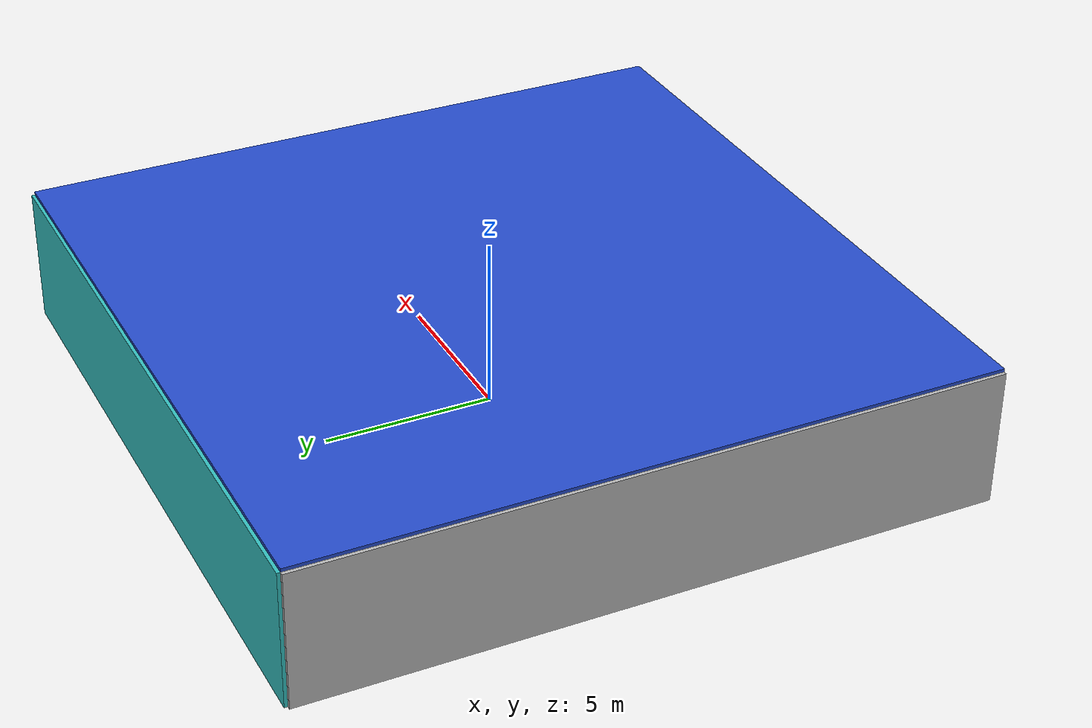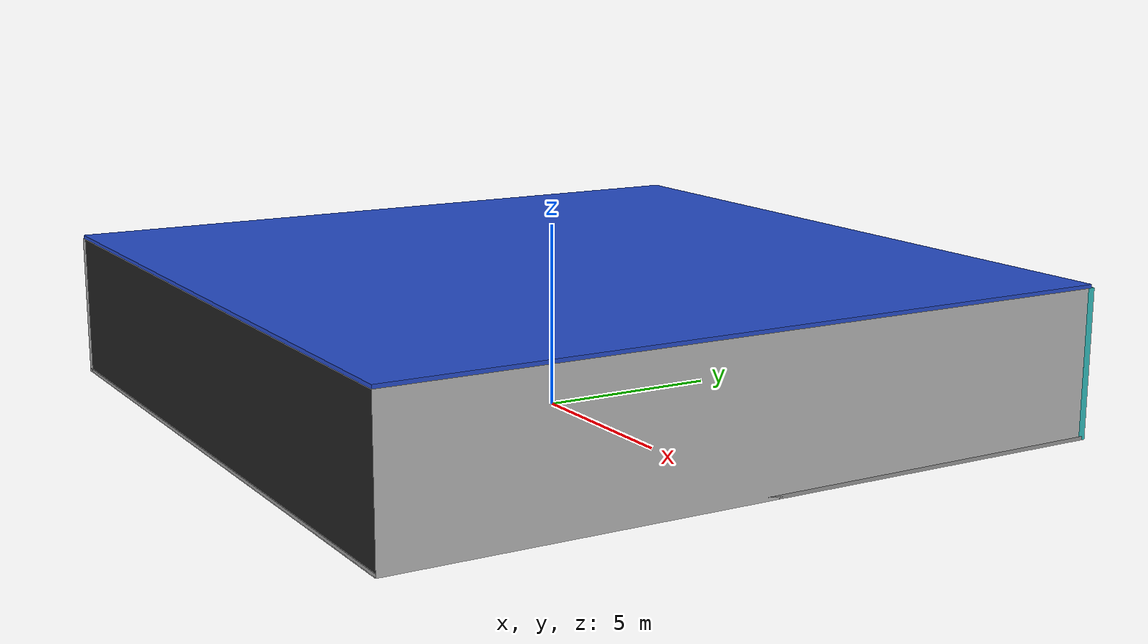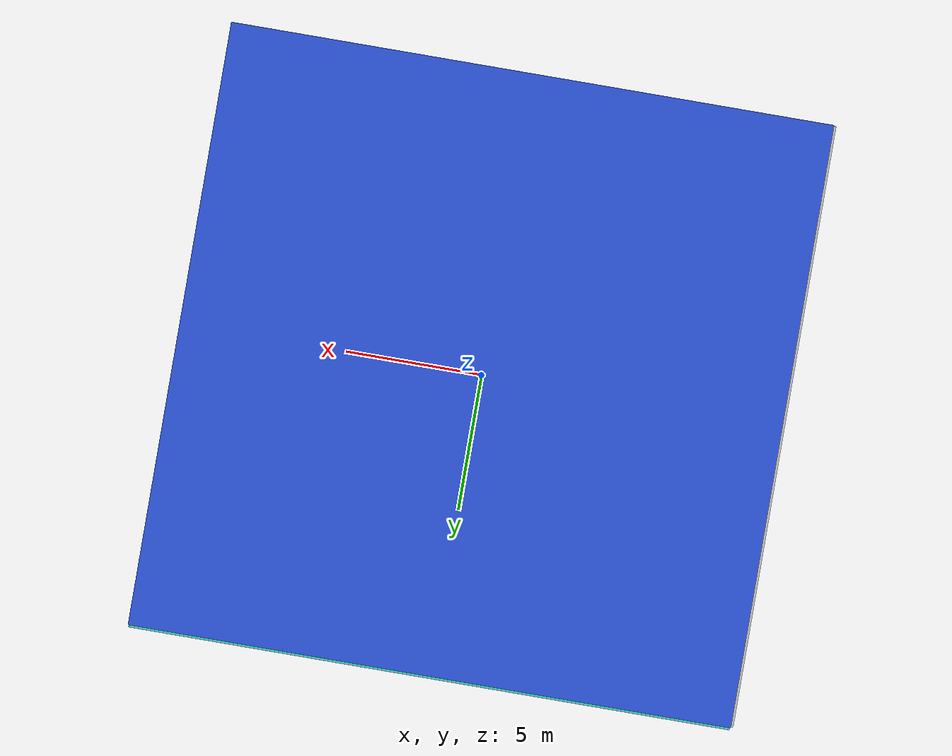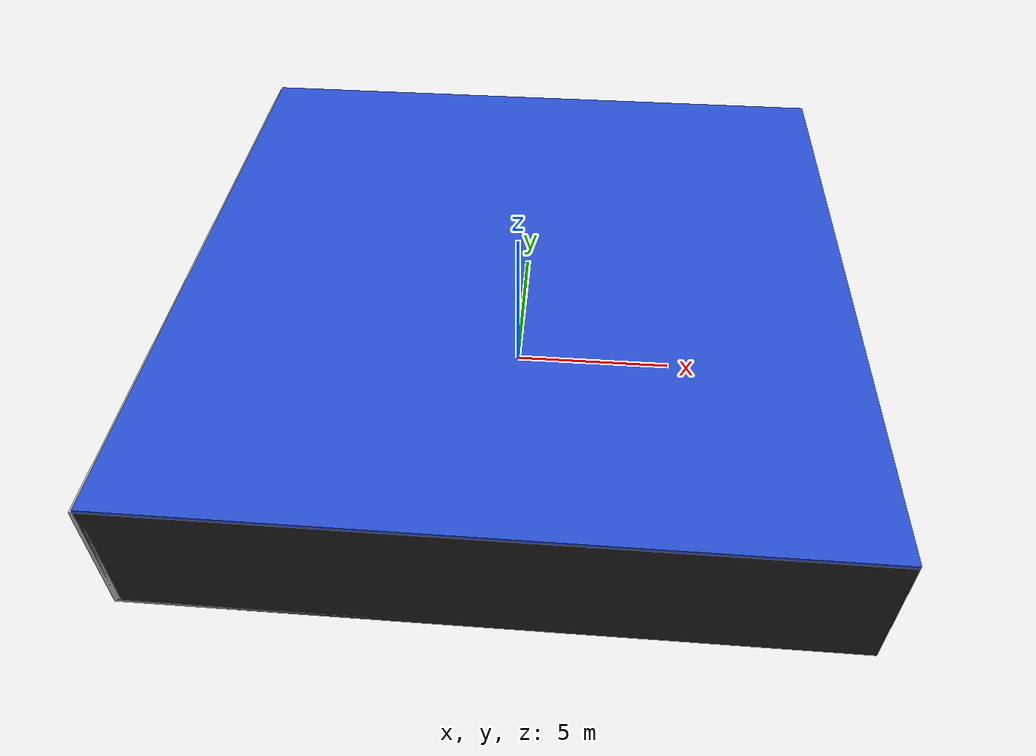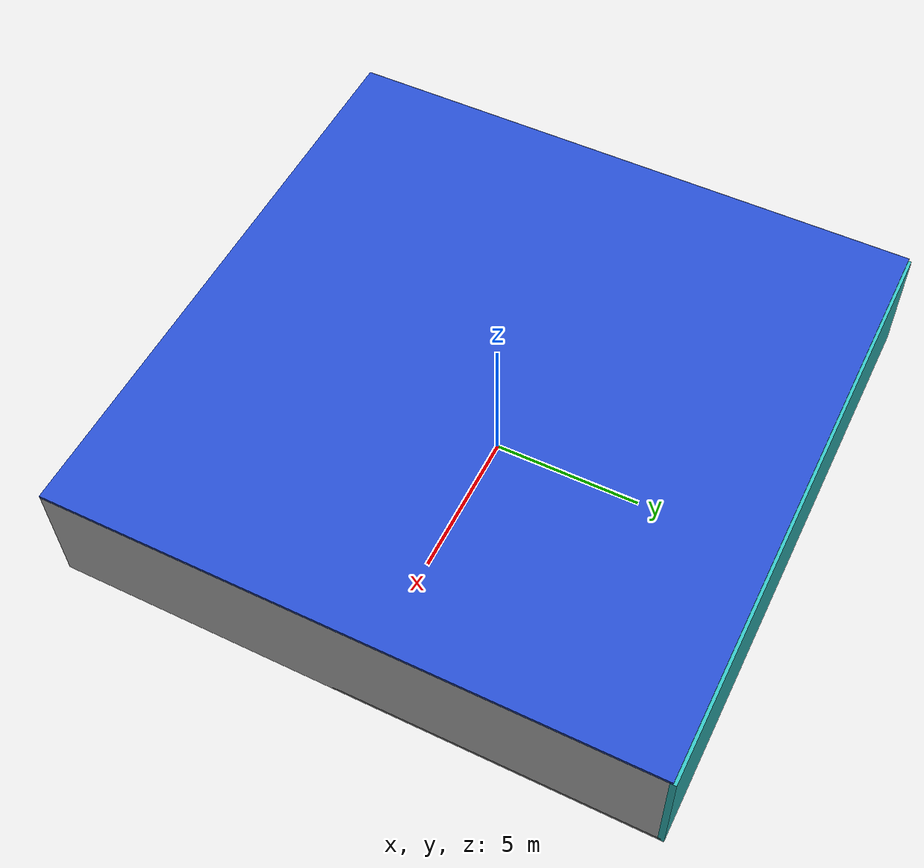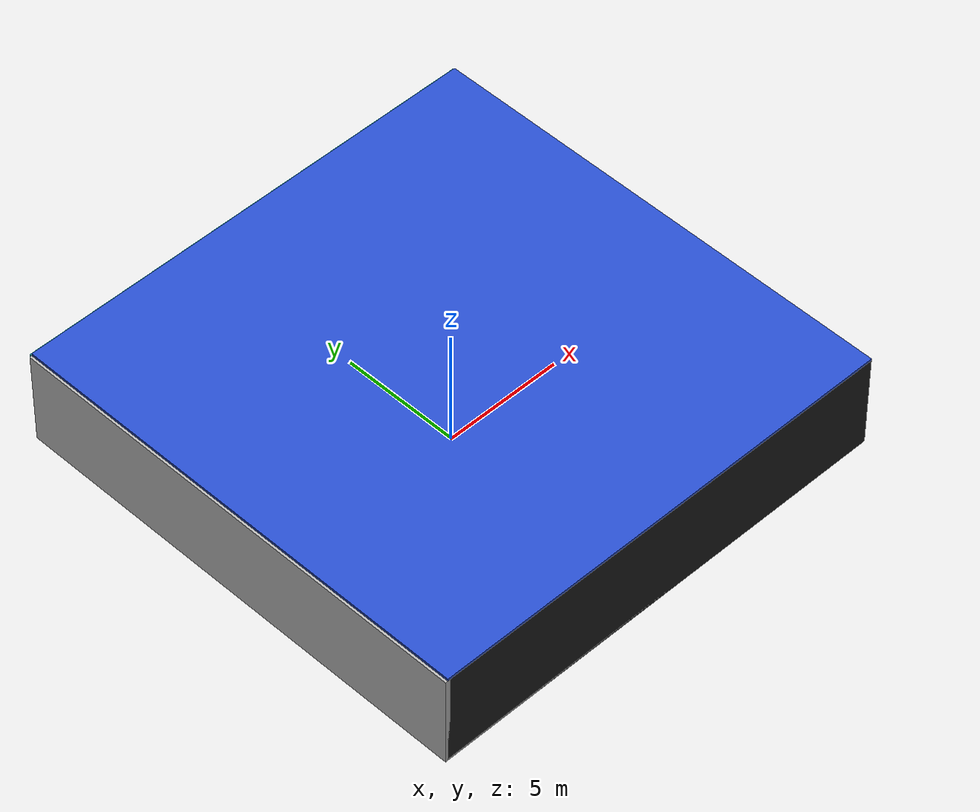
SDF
<sdf version="1.4">
 <world name="default">
  <physics type="ode">
   <max_step_size>0.001</max_step_size>
   <real_time_factor>1</real_time_factor>
   <real_time_update_rate>1000</real_time_update_rate>
   <gravity>0 0 -9.8</gravity>
  </physics>
  <scene><ambient>0.4 0.4 0.4 1</ambient><background>0.7 0.7 0.7 1</background><shadows>1</shadows></scene>
  <model name="Surrounding">
   <static>1</static>
   <link name="Ceiling">
    <collision name="Ceiling_Collision"><geometry><box><size>20 20 0.1</size></box></geometry></collision>
    <visual name="Ceiling_Visual">
     <geometry><box><size>20 20 0.1</size></box></geometry>
     <material>
      <script><uri>file://media/materials/scripts/gazebo.material</uri><name>Gazebo/BlueLaser</name></script>
     </material>
    </visual>
    <pose>0 0 4.05 0 0 0</pose>
   </link>
   <link name="Wall_South">
    <collision name="Wall_South_Collision">
     <geometry><box><size>20 0 4</size></box></geometry>
     <pose>0 0 2 0 -0 0</pose>
    </collision>
    <visual name="Wall_South_Visual">
     <pose>0 0 2 0 -0 0</pose>
     <geometry><box><size>20 0 4</size></box></geometry>
     <material>
      <script><uri>file://media/materials/scripts/gazebo.material</uri><name>Gazebo/Black</name></script>
     </material>
    </visual>
    <velocity_decay><linear>0</linear><angular>0</angular></velocity_decay>
    <pose>0 -10 0 0 -0 0</pose>
   </link>
   <link name="Wall_East">
    <collision name="Wall_21_Collision">
     <geometry><box><size>20 0 4</size></box></geometry>
     <pose>0 0 2 0 -0 0</pose>
    </collision>
    <visual name="Wall_21_Visual">
     <pose>0 0 2 0 -0 0</pose>
     <geometry><box><size>20 0 4</size></box></geometry>
     <material>
      <script><uri>file://media/materials/scripts/gazebo.material</uri><name>Gazebo/Pioneer2Body</name></script>
     </material>
    </visual>
    <velocity_decay><linear>0</linear><angular>0</angular></velocity_decay>
    <pose>10 0 0 0 -0 1.5708</pose>
   </link>
   <link name="Wall_North">
    <collision name="Wall_22_Collision">
     <geometry><box><size>20 0.2 4</size></box></geometry>
     <pose>0 0 2 0 -0 0</pose>
    </collision>
    <visual name="Wall_22_Visual">
     <pose>0 0 2 0 -0 0</pose>
     <geometry><box><size>20 0.2 4</size></box></geometry>
     <material>
      <script><uri>file://media/materials/scripts/gazebo.material</uri><name>Gazebo/Turquoise</name></script>
     </material>
    </visual>
    <velocity_decay><linear>0</linear><angular>0</angular></velocity_decay>
    <pose>0 10 0 0 -0 0</pose>
   </link>
   <link name="Wall_West">
    <collision name="Wall_23_Collision">
     <geometry><box><size>20 0.2 4</size></box></geometry>
     <pose>0 0 2 0 -0 0</pose>
    </collision>
    <visual name="Wall_23_Visual">
     <pose>0 0 2 0 -0 0</pose>
     <geometry><box><size>20 0.2 4</size></box></geometry>
     <material>
      <script><uri>file://media/materials/scripts/gazebo.material</uri><name>Gazebo/CloudySky</name></script>
     </material>
    </visual>
    <velocity_decay><linear>0</linear><angular>0</angular></velocity_decay>
    <pose>-10 0 0 0 0 -1.5708</pose>
   </link>
   <link name="Ground_link">
    <collision name="collision">
     <pose>0 0 .05 0 -0 0</pose>
     <geometry><box><size>20 20 0.1</size></box></geometry>
    </collision>
    <visual name="visual">
     <pose>0 0 .05 0 -0 0</pose>
     <geometry><box><size>20 20 0.1</size></box></geometry>
     <material>
      <script><uri>file://media/materials/scripts/gazebo.material</uri><name>Gazebo/Grey</name></script>
     </material>
    </visual>
   </link>
   <static>1</static>
  </model>
  <spherical_coordinates>
   <surface_model>EARTH_WGS84</surface_model>
   <latitude_deg>0</latitude_deg>
   <longitude_deg>0</longitude_deg>
   <elevation>0</elevation>
   <heading_deg>0</heading_deg>
  </spherical_coordinates>
  <light name="lightball_0" type="diffuse">
   <diffuse>0.8 0.8 0.8 1</diffuse>
   <specular>0.2 0.2 0.2 1</specular>
   <attenuation>
    <range>100</range>
    <constant>0.7</constant>
    <linear>0.01</linear>
    <quadratic>0.001</quadratic>
   </attenuation>
   <direction>-0.5 0.1 -0.9</direction>
   <pose>0.212402538677 -0.668545266537 1.65260619124 0 0 0</pose>
  </light>
  <light name="lightball_1" type="diffuse">
   <diffuse>0.8 0.8 0.8 1</diffuse>
   <specular>0.2 0.2 0.2 1</specular>
   <attenuation>
    <range>100</range>
    <constant>0.7</constant>
    <linear>0.01</linear>
    <quadratic>0.001</quadratic>
   </attenuation>
   <direction>-0.5 0.1 -0.9</direction>
   <pose>-3.85496121291 6.5721290081 3.18906038701 0 0 0</pose>
  </light>
  <light name="lightball_2" type="diffuse">
   <diffuse>0.8 0.8 0.8 1</diffuse>
   <specular>0.2 0.2 0.2 1</specular>
   <attenuation>
    <range>100</range>
    <constant>0.7</constant>
    <linear>0.01</linear>
    <quadratic>0.001</quadratic>
   </attenuation>
   <direction>-0.5 0.1 -0.9</direction>
   <pose>1.88399514196 -7.56527766867 2.16695401871 0 0 0</pose>
  </light>
  <light name="lightball_3" type="diffuse">
   <diffuse>0.8 0.8 0.8 1</diffuse>
   <specular>0.2 0.2 0.2 1</specular>
   <attenuation>
    <range>100</range>
    <constant>0.7</constant>
    <linear>0.01</linear>
    <quadratic>0.001</quadratic>
   </attenuation>
   <direction>-0.5 0.1 -0.9</direction>
   <pose>-9.7775527954 4.63411061408 2.42954229169 0 0 0</pose>
  </light>
  <light name="lightball_4" type="diffuse">
   <diffuse>0.8 0.8 0.8 1</diffuse>
   <specular>0.2 0.2 0.2 1</specular>
   <attenuation>
    <range>100</range>
    <constant>0.7</constant>
    <linear>0.01</linear>
    <quadratic>0.001</quadratic>
   </attenuation>
   <direction>-0.5 0.1 -0.9</direction>
   <pose>-1.84702623314 -4.78623205844 3.0264877694 0 0 0</pose>
  </light>
  <light name="lightball_5" type="diffuse">
   <diffuse>0.8 0.8 0.8 1</diffuse>
   <specular>0.2 0.2 0.2 1</specular>
   <attenuation>
    <range>100</range>
    <constant>0.7</constant>
    <linear>0.01</linear>
    <quadratic>0.001</quadratic>
   </attenuation>
   <direction>-0.5 0.1 -0.9</direction>
   <pose>3.76069950441 -3.10362959785 3.43402894396 0 0 0</pose>
  </light>
  <light name="lightball_6" type="diffuse">
   <diffuse>0.8 0.8 0.8 1</diffuse>
   <specular>0.2 0.2 0.2 1</specular>
   <attenuation>
    <range>100</range>
    <constant>0.7</constant>
    <linear>0.01</linear>
    <quadratic>0.001</quadratic>
   </attenuation>
   <direction>-0.5 0.1 -0.9</direction>
   <pose>8.74576289475 3.74182353818 2.82899265503 0 0 0</pose>
  </light>
  <light name="lightball_7" type="diffuse">
   <diffuse>0.8 0.8 0.8 1</diffuse>
   <specular>0.2 0.2 0.2 1</specular>
   <attenuation>
    <range>100</range>
    <constant>0.7</constant>
    <linear>0.01</linear>
    <quadratic>0.001</quadratic>
   </attenuation>
   <direction>-0.5 0.1 -0.9</direction>
   <pose>-8.56189120453 -7.55356437306 3.79006766249 0 0 0</pose>
  </light>
  <light name="lightball_8" type="diffuse">
   <diffuse>0.8 0.8 0.8 1</diffuse>
   <specular>0.2 0.2 0.2 1</specular>
   <attenuation>
    <range>100</range>
    <constant>0.7</constant>
    <linear>0.01</linear>
    <quadratic>0.001</quadratic>
   </attenuation>
   <direction>-0.5 0.1 -0.9</direction>
   <pose>8.93244951502 1.53742129537 2.55300187475 0 0 0</pose>
  </light>
  <light name="lightball_9" type="diffuse">
   <diffuse>0.8 0.8 0.8 1</diffuse>
   <specular>0.2 0.2 0.2 1</specular>
   <attenuation>
    <range>100</range>
    <constant>0.7</constant>
    <linear>0.01</linear>
    <quadratic>0.001</quadratic>
   </attenuation>
   <direction>-0.5 0.1 -0.9</direction>
   <pose>-9.99616452617 -5.95065952784 2.37185545017 0 0 0</pose>
  </light>
  <include><uri>model://cabinet</uri><pose>-6.32001055497 6.72325539873 0 0 0 0.291792206714</pose></include>
  <include>
   <uri>model://robocup_3Dsim_goal</uri>
   <pose>-5.16864286819 -1.16990464183 0 0 0 0.05978338612</pose>
  </include>
  <include>
   <uri>model://construction_cone</uri>
   <pose>-0.994910469506 2.27302370132 0 0 0 2.85305514835</pose>
  </include>
  <include><uri>model://table</uri><pose>0.746525168135 -1.21877152029 0 0 0 0.473921681505</pose></include>
  <include>
   <uri>model://textured_shapes</uri>
   <pose>1.66860955587 3.71622331076 0 0 0 0.980501817323</pose>
  </include>
  <include><uri>model://cabinet</uri><pose>0.592784305329 7.64837260649 0 0 0 1.11733905958</pose></include>
  <include>
   <uri>model://construction_cone</uri>
   <pose>3.55413248591 5.00809954096 0 0 0 2.12534531932</pose>
  </include>
  <include><uri>model://table</uri><pose>3.92577943726 6.33800131849 0 0 0 1.84249325455</pose></include>
  <include>
   <uri>model://construction_cone</uri>
   <pose>8.32144730958 -1.47293809636 0 0 0 1.92750646701</pose>
  </include>
  <include>
   <uri>model://robocup_3Dsim_goal</uri>
   <pose>6.49660572631 5.564381251 0 0 0 2.31875029183</pose>
  </include>
 </world>
</sdf>

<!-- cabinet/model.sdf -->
<sdf version="1.5">
  <model name="cabinet">
    <static>true</static>
    <link name="cabinet_bottom_plate">
      <inertial>
        <pose>0 0 -1 0 0 0</pose>
        <inertia>
          <ixx>2.050000</ixx>
          <ixy>0</ixy>
          <ixz>0</ixz>
          <iyy>2.050000</iyy>
          <iyz>0</iyz>
          <izz>2.050000</izz>
        </inertia>
        <mass>25.000000</mass>
      </inertial>
      <collision name="cabinet_bottom_plate_geom">
        <pose>0 0 0.010000 0 0 0</pose>
        <geometry>
          <box>
            <size>0.450000 0.450000 0.020000</size>
          </box>
        </geometry>
      </collision>
      <visual name="cabinet_bottom_plate_geom_visual">
        <pose>0 0 0.010000 0 0 0</pose>
        <geometry>
          <box>
            <size>0.450000 0.450000 0.020000</size>
          </box>
        </geometry>
        <material>
          <script>
            <uri>model://media/materials/scripts/gazebo.material</uri>
            <name>Gazebo/Wood</name>
          </script>
        </material>
      </visual>
      <collision name="cabinet_bottom_plate_geom_cabinet_back_plate">
        <pose>0.235000 0 0.510000 0 0 0</pose>
        <geometry>
          <box>
            <size>0.020000 0.450000 1.020000</size>
          </box>
        </geometry>
      </collision>
      <visual name="cabinet_bottom_plate_geom_cabinet_back_plate_visual">
        <pose>0.235000 0 0.510000 0 0 0</pose>
        <geometry>
          <box>
            <size>0.020000 0.450000 1.020000</size>
          </box>
        </geometry>
        <material>
          <script>
            <uri>model://media/materials/scripts/gazebo.material</uri>
            <name>Gazebo/Wood</name>
          </script>
        </material>
      </visual>
      <collision name="cabinet_bottom_plate_geom_cabinet_left_plate">
        <pose>0 0.235000 0.510000 0 0 0</pose>
        <geometry>
          <box>
            <size>0.450000 0.020000 1.020000</size>
          </box>
        </geometry>
      </collision>
      <visual name="cabinet_bottom_plate_geom_cabinet_left_plate_visual">
        <pose>0 0.235000 0.510000 0 0 0</pose>
        <geometry>
          <box>
            <size>0.450000 0.020000 1.020000</size>
          </box>
        </geometry>
        <material>
          <script>
            <uri>model://media/materials/scripts/gazebo.material</uri>
            <name>Gazebo/Wood</name>
          </script>
        </material>
      </visual>
      <collision name="cabinet_bottom_plate_geom_cabinet_middle_plate">
        <pose>0 0 0.510000 0 0 0</pose>
        <geometry>
          <box>
            <size>0.450000 0.450000 0.020000</size>
          </box>
        </geometry>
      </collision>
      <visual name="cabinet_bottom_plate_geom_cabinet_middle_plate_visual">
        <pose>0 0 0.510000 0 0 0</pose>
        <geometry>
          <box>
            <size>0.450000 0.450000 0.020000</size>
          </box>
        </geometry>
        <material>
          <script>
            <uri>model://media/materials/scripts/gazebo.material</uri>
            <name>Gazebo/Wood</name>
          </script>
        </material>
      </visual>
      <collision name="cabinet_bottom_plate_geom_cabinet_right_plate">
        <pose>0 -0.235000 0.510000 0 0 0</pose>
        <geometry>
          <box>
            <size>0.450000 0.020000 1.020000</size>
          </box>
        </geometry>
      </collision>
      <visual name="cabinet_bottom_plate_geom_cabinet_right_plate_visual">
        <pose>0 -0.235000 0.510000 0 0 0</pose>
        <geometry>
          <box>
            <size>0.450000 0.020000 1.020000</size>
          </box>
        </geometry>
        <material>
          <script>
            <uri>model://media/materials/scripts/gazebo.material</uri>
            <name>Gazebo/Wood</name>
          </script>
        </material>
      </visual>
      <collision name="cabinet_bottom_plate_geom_cabinet_top_plate">
        <pose>0 0 1.010000 0 0 0</pose>
        <geometry>
          <box>
            <size>0.450000 0.450000 0.020000</size>
          </box>
        </geometry>
      </collision>
      <visual name="cabinet_bottom_plate_geom_cabinet_top_plate_visual">
        <pose>0 0 1.010000 0 0 0</pose>
        <geometry>
          <box>
            <size>0.450000 0.450000 0.020000</size>
          </box>
        </geometry>
        <material>
          <script>
            <uri>model://media/materials/scripts/gazebo.material</uri>
            <name>Gazebo/Wood</name>
          </script>
        </material>
      </visual>
    </link>
  </model>
</sdf>

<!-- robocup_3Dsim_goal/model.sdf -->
<sdf version="1.5">
  <model name="robocup_3d_goal">
    <static>true</static>
    <link name="left_post">
      <pose>0 1.05 0.45 0 0 0</pose>
      <collision name="collision">
        <geometry>
          <cylinder>
            <radius>0.05</radius>
            <length>0.9</length>
          </cylinder>
        </geometry>
      </collision>
      <visual name="visual">
        <geometry>
          <cylinder>
            <radius>0.05</radius>
            <length>0.9</length>
          </cylinder>
        </geometry>
        <material>
          <script>
            <uri>file://media/materials/scripts/gazebo.material</uri>
            <name>Gazebo/ZincYellow</name>
          </script>
        </material>
      </visual>
    </link>
    <link name="left_support_horiz_lower">
      <pose>0.30 1.05 0.01 0 0 0</pose>
      <collision name="collision">
        <geometry>
          <box>
            <size>0.50 0.02 0.02</size>
          </box>
        </geometry>
      </collision>
      <visual name="visual">
        <geometry>
          <box>
            <size>0.50 0.02 0.02</size>
          </box>
        </geometry>
        <material>
          <script>
            <uri>file://media/materials/scripts/gazebo.material</uri>
            <name>Gazebo/White</name>
          </script>
        </material>
      </visual>
    </link>
    <link name="left_support_horiz_upper">
      <pose>0.30 1.05 0.79 0 0 0</pose>
      <collision name="collision">
        <geometry>
          <box>
            <size>0.50 0.02 0.02</size>
          </box>
        </geometry>
      </collision>
      <visual name="visual">
        <geometry>
          <box>
            <size>0.50 0.02 0.02</size>
          </box>
        </geometry>
        <material>
          <script>
            <uri>file://media/materials/scripts/gazebo.material</uri>
            <name>Gazebo/White</name>
          </script>
        </material>
      </visual>
    </link>
    <link name="left_support_vertical">
      <pose>0.56 1.05 0.4 0 1.5708 0</pose>
      <collision name="collision">
        <geometry>
          <box>
            <size>0.80 0.02 0.02</size>
          </box>
        </geometry>
      </collision>
      <visual name="visual">
        <geometry>
          <box>
            <size>0.80 0.02 0.02</size>
          </box>
        </geometry>
        <material>
          <script>
            <uri>file://media/materials/scripts/gazebo.material</uri>
            <name>Gazebo/White</name>
          </script>
        </material>
      </visual>
    </link>
    <link name="right_support_horiz_lower">
      <pose>0.30 -1.05 0.01 0 0 0</pose>
      <collision name="collision">
        <geometry>
          <box>
            <size>0.50 0.02 0.02</size>
          </box>
        </geometry>
      </collision>
      <visual name="visual">
        <geometry>
          <box>
            <size>0.50 0.02 0.02</size>
          </box>
        </geometry>
        <material>
          <script>
            <uri>file://media/materials/scripts/gazebo.material</uri>
            <name>Gazebo/White</name>
          </script>
        </material>
      </visual>
    </link>
    <link name="right_support_horiz_upper">
      <pose>0.30 -1.05 0.79 0 0 0</pose>
      <collision name="collision">
        <geometry>
          <box>
            <size>0.50 0.02 0.02</size>
          </box>
        </geometry>
      </collision>
      <visual name="visual">
        <geometry>
          <box>
            <size>0.50 0.02 0.02</size>
          </box>
        </geometry>
        <material>
          <script>
            <uri>file://media/materials/scripts/gazebo.material</uri>
            <name>Gazebo/White</name>
          </script>
        </material>
      </visual>
    </link>
    <link name="right_support_vertical">
      <pose>0.56 -1.05 0.4 0 1.5708 0</pose>
      <collision name="collision">
        <geometry>
          <box>
            <size>0.80 0.02 0.02</size>
          </box>
        </geometry>
      </collision>
      <visual name="visual">
        <geometry>
          <box>
            <size>0.80 0.02 0.02</size>
          </box>
        </geometry>
        <material>
          <script>
            <uri>file://media/materials/scripts/gazebo.material</uri>
            <name>Gazebo/White</name>
          </script>
        </material>
      </visual>
    </link>
    <link name="center_support_horiz_lower">
      <pose>0.56 0 0.01 0 1.5708 0</pose>
      <collision name="collision">
        <geometry>
          <box>
            <size>0.02 2.08 0.02</size>
          </box>
        </geometry>
      </collision>
      <visual name="visual">
        <geometry>
          <box>
            <size>0.02 2.08 0.02</size>
          </box>
        </geometry>
        <material>
          <script>
            <uri>file://media/materials/scripts/gazebo.material</uri>
            <name>Gazebo/White</name>
          </script>
        </material>
      </visual>
    </link>
    <link name="center_support_horiz_upper">
      <pose>0.56 0 0.79 0 1.5708 0</pose>
      <collision name="collision">
        <geometry>
          <box>
            <size>0.02 2.08 0.02</size>
          </box>
        </geometry>
      </collision>
      <visual name="visual">
        <geometry>
          <box>
            <size>0.02 2.08 0.02</size>
          </box>
        </geometry>
        <material>
          <script>
            <uri>file://media/materials/scripts/gazebo.material</uri>
            <name>Gazebo/White</name>
          </script>
        </material>
      </visual>
    </link>
    <link name="right_post">
      <pose>0 -1.05 0.45 0 0 0</pose>
      <collision name="collision">
        <geometry>
          <cylinder>
            <radius>0.05</radius>
            <length>0.9</length>
          </cylinder>
        </geometry>
      </collision>
      <visual name="visual">
        <geometry>
          <cylinder>
            <radius>0.05</radius>
            <length>0.9</length>
          </cylinder>
        </geometry>
        <material>
          <script>
            <uri>file://media/materials/scripts/gazebo.material</uri>
            <name>Gazebo/ZincYellow</name>
          </script>
        </material>
      </visual>
    </link>
    <link name="crossbar">
      <pose>0 0 0.85 1.57 1.57 0</pose>
      <collision name="collision">
        <geometry>
          <cylinder>
            <radius>0.05</radius>
            <length>2.0</length>
          </cylinder>
        </geometry>
      </collision>
      <visual name="visual">
        <geometry>
          <cylinder>
            <radius>0.05</radius>
            <length>2.0</length>
          </cylinder>
        </geometry>
        <material>
          <script>
            <uri>file://media/materials/scripts/gazebo.material</uri>
            <name>Gazebo/ZincYellow</name>
          </script>
        </material>
      </visual>
    </link>
    <link name="center_net">
      <pose>0.56 0 0.40 0 0 0</pose>
      <collision name="collision">
        <geometry>
          <box>
            <size>0.01 2.1 0.80</size>
          </box>
        </geometry>
      </collision>
      <visual name="visual">
        <geometry>
          <box>
            <size>0.01 2.1 0.80</size>
          </box>
        </geometry>
        <material>
          <script>
            <uri>model://../model_source/models/robocup09_spl_field/materials/scripts/</uri>
            <uri>model://../model_source/models/robocup09_spl_field/materials/textures/</uri>
            <name>RoboCup/Net</name>
          </script>
        </material>
      </visual>
    </link>
    <link name="left_net">
      <pose>0.30 1.05 0.40 0 0 0</pose>
      <collision name="collision">
        <geometry>
          <box>
            <size>0.50 0.01 0.76</size>
          </box>
        </geometry>
      </collision>
      <visual name="visual">
        <geometry>
          <box>
            <size>0.50 0.01 0.76</size>
          </box>
        </geometry>
        <material>
          <script>
            <uri>model://../model_source/models/robocup09_spl_field/materials/scripts/</uri>
            <uri>model://../model_source/models/robocup09_spl_field/materials/textures/</uri>
            <name>RoboCup/Net</name>
          </script>
        </material>
      </visual>
    </link>
    <link name="right_net">
      <pose>0.30 -1.05 0.40 0 0 0</pose>
      <collision name="collision">
        <geometry>
          <box>
            <size>0.50 0.01 0.76</size>
          </box>
        </geometry>
      </collision>
      <visual name="visual">
        <geometry>
          <box>
            <size>0.50 0.01 0.76</size>
          </box>
        </geometry>
        <material>
          <script>
            <uri>model://../model_source/models/robocup09_spl_field/materials/scripts/</uri>
            <uri>model://../model_source/models/robocup09_spl_field/materials/textures/</uri>
            <name>RoboCup/Net</name>
          </script>
        </material>
      </visual>
    </link>
  </model>
</sdf>

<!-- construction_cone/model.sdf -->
<sdf version="1.5">
  <model name="Construction Cone">
    <link name="link">
      <collision name="collision">
        <geometry>
          <mesh>
            <scale>10 10 10</scale>
            <uri>file://isr-testbed/construction_cone/meshes/construction_cone.dae</uri>
          </mesh>
        </geometry>
      </collision>
      <visual name="visual">
        <geometry>
          <mesh>
            <scale>10 10 10</scale>
            <uri>file://isr-testbed/construction_cone/meshes/construction_cone.dae</uri>
          </mesh>
        </geometry>
      </visual>
    </link>
  </model>
</sdf>

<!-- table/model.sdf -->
<sdf version="1.5">
  <model name="table">
    <static>true</static>
    <link name="link">
      <collision name="surface">
        <pose>0 0 1.0 0 0 0</pose>
        <geometry>
          <box>
            <size>1.5 0.8 0.03</size>
          </box>
        </geometry>
        <surface>
          <friction>
            <ode>
              <mu>0.6</mu>
              <mu2>0.6</mu2>
            </ode>
          </friction>
        </surface>
      </collision>
      <visual name="visual1">
        <pose>0 0 1.0 0 0 0</pose>
        <geometry>
          <box>
            <size>1.5 0.8 0.03</size>
          </box>
        </geometry>
        <material>
          <script>
            <uri>model://media/materials/scripts/gazebo.material</uri>
            <name>Gazebo/Wood</name>
          </script>
        </material>
      </visual>
      <collision name="front_left_leg">
        <pose>0.68 0.38 0.5 0 0 0</pose>
        <geometry>
          <cylinder>
            <radius>0.02</radius>
            <length>1.0</length>
          </cylinder>
        </geometry>
      </collision>
      <visual name="front_left_leg">
        <pose>0.68 0.38 0.5 0 0 0</pose>
        <geometry>
          <cylinder>
            <radius>0.02</radius>
            <length>1.0</length>
          </cylinder>
        </geometry>
        <material>
          <script>
            <uri>model://media/materials/scripts/gazebo.material</uri>
            <name>Gazebo/Grey</name>
          </script>
        </material>
      </visual>
      <collision name="front_right_leg">
        <pose>0.68 -0.38 0.5 0 0 0</pose>
        <geometry>
          <cylinder>
            <radius>0.02</radius>
            <length>1.0</length>
          </cylinder>
        </geometry>
      </collision>
      <visual name="front_right_leg">
        <pose>0.68 -0.38 0.5 0 0 0</pose>
        <geometry>
          <cylinder>
            <radius>0.02</radius>
            <length>1.0</length>
          </cylinder>
        </geometry>
        <material>
          <script>
            <uri>model://media/materials/scripts/gazebo.material</uri>
            <name>Gazebo/Grey</name>
          </script>
        </material>
      </visual>
      <collision name="back_right_leg">
        <pose>-0.68 -0.38 0.5 0 0 0</pose>
        <geometry>
          <cylinder>
            <radius>0.02</radius>
            <length>1.0</length>
          </cylinder>
        </geometry>
      </collision>
      <visual name="back_right_leg">
        <pose>-0.68 -0.38 0.5 0 0 0</pose>
        <geometry>
          <cylinder>
            <radius>0.02</radius>
            <length>1.0</length>
          </cylinder>
        </geometry>
        <material>
          <script>
            <uri>model://media/materials/scripts/gazebo.material</uri>
            <name>Gazebo/Grey</name>
          </script>
        </material>
      </visual>
      <collision name="back_left_leg">
        <pose>-0.68 0.38 0.5 0 0 0</pose>
        <geometry>
          <cylinder>
            <radius>0.02</radius>
            <length>1.0</length>
          </cylinder>
        </geometry>
      </collision>
      <visual name="back_left_leg">
        <pose>-0.68 0.38 0.5 0 0 0</pose>
        <geometry>
          <cylinder>
            <radius>0.02</radius>
            <length>1.0</length>
          </cylinder>
        </geometry>
        <material>
          <script>
            <uri>model://media/materials/scripts/gazebo.material</uri>
            <name>Gazebo/Grey</name>
          </script>
        </material>
      </visual>
    </link>
  </model>
</sdf>

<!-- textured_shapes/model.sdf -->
<sdf version="1.6">
  <model name="textured_shapes">
    <pose>0 0 0.5 0 0 0</pose>
    <link name="box">
      <pose>0 -1.5 0 0 0 0</pose>
      <collision name="collision">
        <geometry>
          <box>
            <size>1 1 1</size>
          </box>
        </geometry>
      </collision>
      <visual name="visual">
        <geometry>
          <box>
            <size>1 1 1</size>
          </box>
        </geometry>
        <material>
          <script>
            <uri>model://../model_source/models/textured_shapes/materials/scripts</uri>
            <uri>model://../model_source/models/textured_shapes/materials/textures</uri>
            <name>TexturedShape/Squares</name>
          </script>
        </material>
      </visual>
    </link>
    <link name="sphere">
      <collision name="collision">
        <geometry>
          <sphere>
            <radius>0.5</radius>
          </sphere>
        </geometry>
      </collision>
      <visual name="visual">
        <geometry>
          <sphere>
            <radius>0.5</radius>
          </sphere>
        </geometry>
        <material>
          <script>
            <uri>model://../model_source/models/textured_shapes/materials/scripts</uri>
            <uri>model://../model_source/models/textured_shapes/materials/textures</uri>
            <name>TexturedShape/Squares</name>
          </script>
        </material>
      </visual>
    </link>
    <link name="cylinder">
      <pose>0 1.5 0 0 0 0</pose>
      <collision name="collision">
        <geometry>
          <cylinder>
            <radius>0.5</radius>
            <length>1</length>
          </cylinder>
        </geometry>
      </collision>
      <visual name="visual">
        <geometry>
          <cylinder>
            <radius>0.5</radius>
            <length>1</length>
          </cylinder>
        </geometry>
        <material>
          <script>
            <uri>model://../model_source/models/textured_shapes/materials/scripts</uri>
            <uri>model://../model_source/models/textured_shapes/materials/textures</uri>
            <name>TexturedShape/Squares</name>
          </script>
        </material>
      </visual>
    </link>
  </model>
</sdf>
